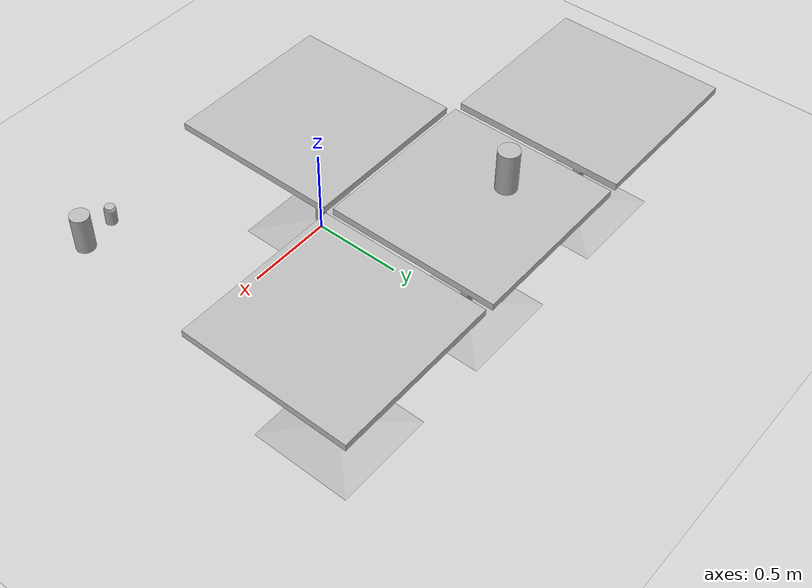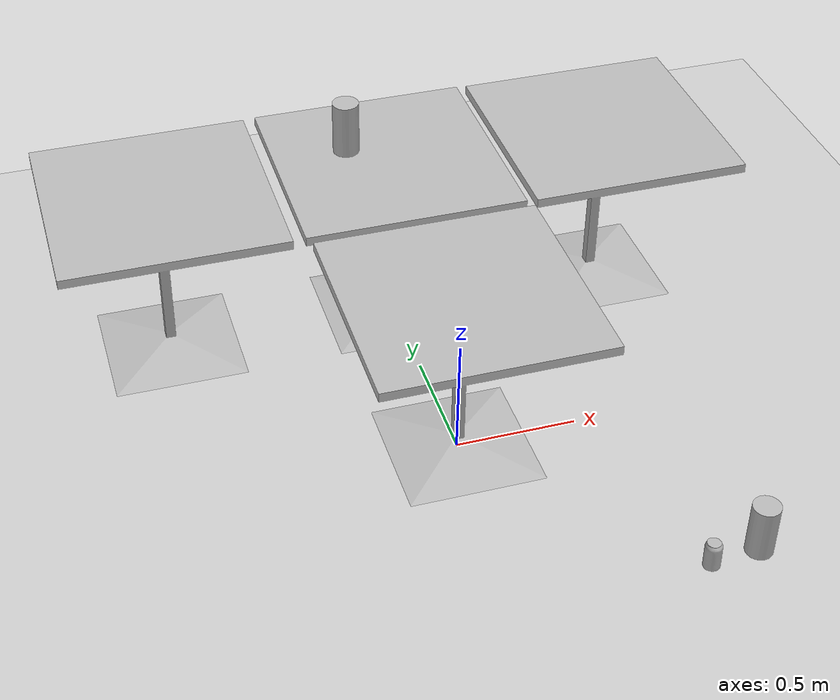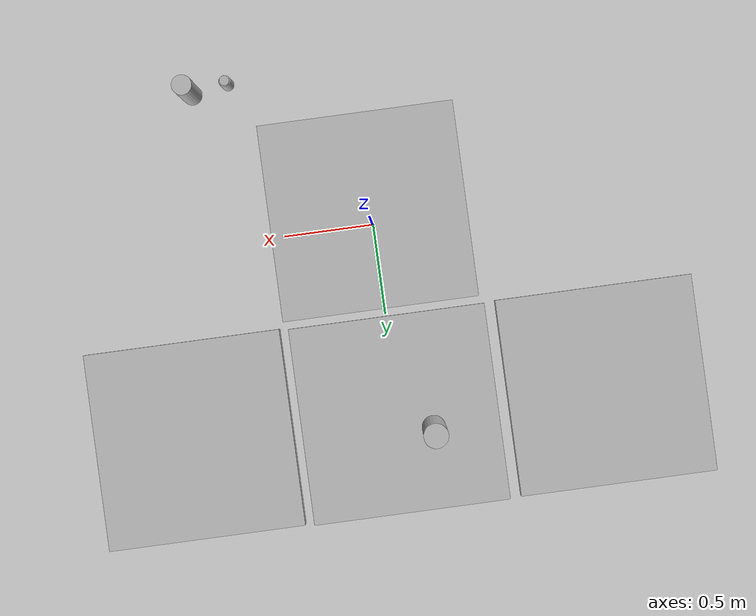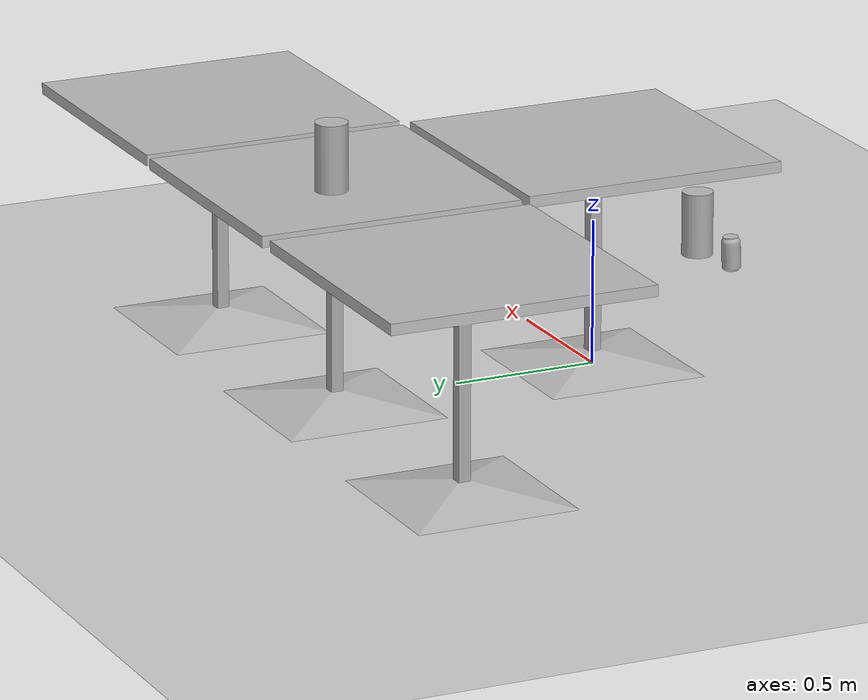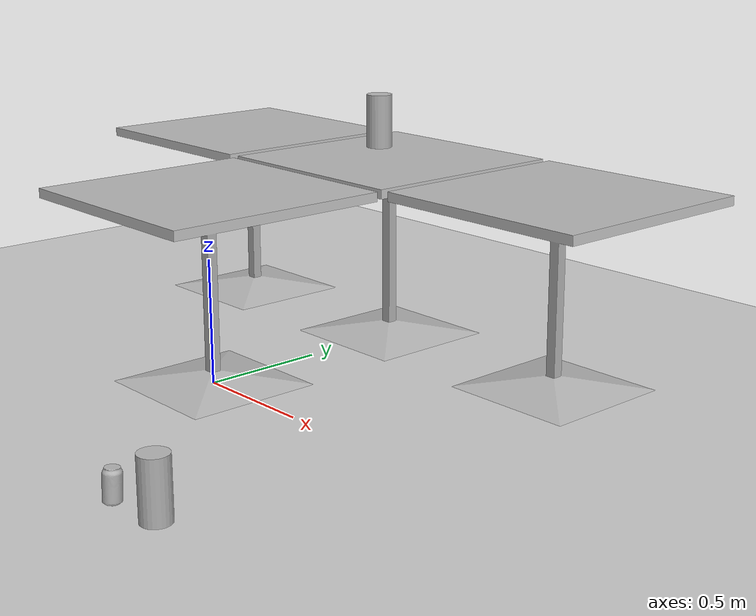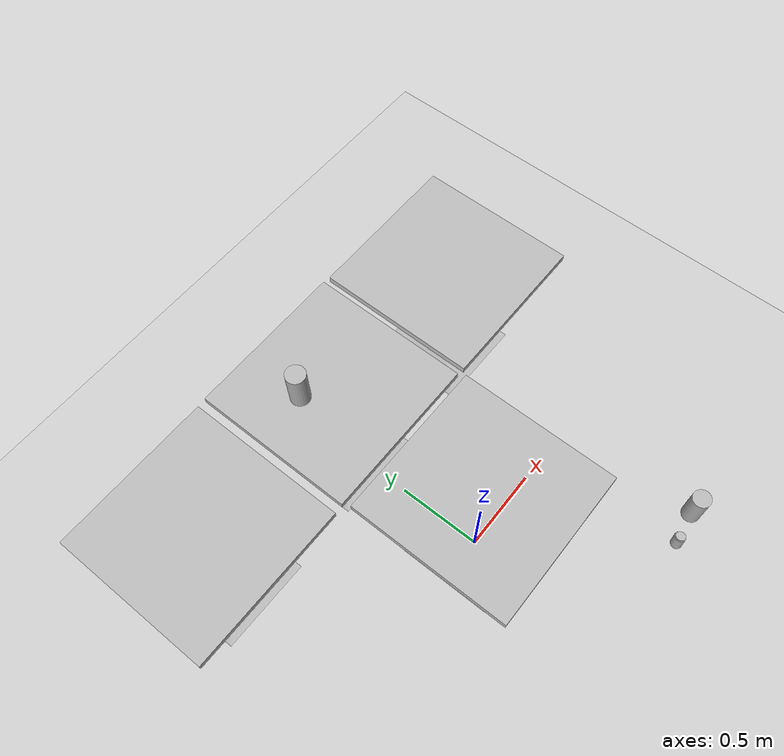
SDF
<sdf version="1.7">
 <world name="default">
  <light name="sun" type="directional">
   <pose>0 0 10 0 -0 0</pose>
   <diffuse>0.8 0.8 0.8 1</diffuse>
   <specular>0.2 0.2 0.2 1</specular>
   <attenuation>
    <range>1000</range>
    <constant>0.9</constant>
    <linear>0.01</linear>
    <quadratic>0.001</quadratic>
   </attenuation>
   <direction>-0.5 0.1 -0.9</direction>
   <spot><inner_angle>0</inner_angle><outer_angle>0</outer_angle><falloff>0</falloff></spot>
  </light>
  <model name="ground_plane">
   <static>1</static>
   <link name="link">
    <collision name="collision">
     <geometry><plane><normal>0 0 1</normal><size>100 100</size></plane></geometry>
     <surface>
      <contact><collide_bitmask>65535</collide_bitmask></contact>
      <friction><ode><mu>100</mu><mu2>50</mu2></ode></friction>
     </surface>
    </collision>
    <visual name="visual">
     <cast_shadows>0</cast_shadows>
     <geometry><plane><normal>0 0 1</normal><size>100 100</size></plane></geometry>
     <material>
      <script><uri>file://media/materials/scripts/gazebo.material</uri><name>Gazebo/Grey</name></script>
     </material>
    </visual>
   </link>
  </model>
  <gravity>0 0 -9.8</gravity>
  <magnetic_field>6e-06 2.3e-05 -4.2e-05</magnetic_field>
  <atmosphere type="adiabatic"/>
  <physics type="ode">
   <max_step_size>0.001</max_step_size>
   <real_time_factor>1</real_time_factor>
   <real_time_update_rate>1000</real_time_update_rate>
  </physics>
  <scene><ambient>0.4 0.4 0.4 1</ambient><background>0.7 0.7 0.7 1</background><shadows>1</shadows></scene>
  <spherical_coordinates>
   <surface_model>EARTH_WGS84</surface_model>
   <latitude_deg>0</latitude_deg>
   <longitude_deg>0</longitude_deg>
   <elevation>0</elevation>
   <heading_deg>0</heading_deg>
  </spherical_coordinates>
  <model name="beer">
   <link name="link">
    <pose>0 0 0.115 0 -0 0</pose>
    <inertial>
     <mass>0.39</mass>
     <inertia><ixx>0.00058</ixx><ixy>0</ixy><ixz>0</ixz><iyy>0.00058</iyy><iyz>0</iyz><izz>0.00019</izz></inertia>
    </inertial>
    <collision name="collision">
     <geometry><cylinder><radius>0.055</radius><length>0.23</length></cylinder></geometry>
    </collision>
    <visual name="visual">
     <geometry><cylinder><radius>0.055</radius><length>0.23</length></cylinder></geometry>
     <material>
      <script>
       <uri>model://beer/materials/scripts</uri>
       <uri>model://beer/materials/textures</uri>
       <name>Beer/Diffuse</name>
      </script>
     </material>
    </visual>
   </link>
   <pose>0.905622 -0.855339 -7e-06 -1e-06 -0 -1.7e-05</pose>
  </model>
  <model name="coke_can">
   <link name="link">
    <inertial>
     <pose>0 0 0.06 0 -0 0</pose>
     <mass>0.39</mass>
     <inertia>
      <ixx>0.00055575</ixx>
      <ixy>0</ixy>
      <ixz>0</ixz>
      <iyy>0.00055575</iyy>
      <iyz>0</iyz>
      <izz>0.0001755</izz>
     </inertia>
    </inertial>
    <collision name="collision">
     <pose>0.003937 0.004724 -0.18 0 -0 0</pose>
     <geometry><mesh><uri>model://coke_can/meshes/coke_can.dae</uri></mesh></geometry>
     <surface>
      <friction><ode><mu>1</mu><mu2>1</mu2></ode></friction>
      <contact><ode><kp>1e+07</kp><kd>1</kd><min_depth>0.001</min_depth><max_vel>0.1</max_vel></ode></contact>
     </surface>
    </collision>
    <visual name="visual">
     <pose>0.003937 0.004724 -0.18 0 -0 0</pose>
     <geometry><mesh><uri>model://coke_can/meshes/coke_can.dae</uri></mesh></geometry>
    </visual>
   </link>
   <pose>0.698522 -0.88353 -0.003265 -0.047939 -0.001484 -0.000787</pose>
  </model>
  <model name="cafe_table">
   <link name="link">
    <visual name="visual">
     <geometry><mesh><uri>model://cafe_table/meshes/cafe_table.dae</uri></mesh></geometry>
     <material><shader type="pixel"/></material>
    </visual>
    <collision name="surface">
     <pose>0 0 0.755 0 -0 0</pose>
     <geometry><box><size>0.913 0.913 0.04</size></box></geometry>
     <surface>
      <friction>
       <ode><mu>1</mu><mu2>1</mu2><fdir1>0 0 0</fdir1><slip1>0</slip1><slip2>0</slip2></ode>
       <torsional>
        <coefficient>1</coefficient>
        <patch_radius>0</patch_radius>
        <surface_radius>0</surface_radius>
        <use_patch_radius>1</use_patch_radius>
        <ode><slip>0</slip></ode>
       </torsional>
      </friction>
      <bounce><restitution_coefficient>0</restitution_coefficient><threshold>1e+06</threshold></bounce>
      <contact>
       <collide_without_contact>0</collide_without_contact>
       <collide_without_contact_bitmask>1</collide_without_contact_bitmask>
       <collide_bitmask>1</collide_bitmask>
       <ode>
        <soft_cfm>0</soft_cfm>
        <soft_erp>0.2</soft_erp>
        <kp>1e+13</kp>
        <kd>1</kd>
        <max_vel>0.01</max_vel>
        <min_depth>0</min_depth>
       </ode>
       <bullet>
        <split_impulse>1</split_impulse>
        <split_impulse_penetration_threshold>-0.01</split_impulse_penetration_threshold>
        <soft_cfm>0</soft_cfm>
        <soft_erp>0.2</soft_erp>
        <kp>1e+13</kp>
        <kd>1</kd>
       </bullet>
      </contact>
     </surface>
    </collision>
    <collision name="base">
     <pose>0 0 0.02 0 -0 0</pose>
     <geometry><box><size>0.56 0.56 0.04</size></box></geometry>
     <surface>
      <friction>
       <ode><mu>1</mu><mu2>1</mu2><fdir1>0 0 0</fdir1><slip1>0</slip1><slip2>0</slip2></ode>
       <torsional>
        <coefficient>1</coefficient>
        <patch_radius>0</patch_radius>
        <surface_radius>0</surface_radius>
        <use_patch_radius>1</use_patch_radius>
        <ode><slip>0</slip></ode>
       </torsional>
      </friction>
      <bounce><restitution_coefficient>0</restitution_coefficient><threshold>1e+06</threshold></bounce>
      <contact>
       <collide_without_contact>0</collide_without_contact>
       <collide_without_contact_bitmask>1</collide_without_contact_bitmask>
       <collide_bitmask>1</collide_bitmask>
       <ode>
        <soft_cfm>0</soft_cfm>
        <soft_erp>0.2</soft_erp>
        <kp>1e+13</kp>
        <kd>1</kd>
        <max_vel>0.01</max_vel>
        <min_depth>0</min_depth>
       </ode>
       <bullet>
        <split_impulse>1</split_impulse>
        <split_impulse_penetration_threshold>-0.01</split_impulse_penetration_threshold>
        <soft_cfm>0</soft_cfm>
        <soft_erp>0.2</soft_erp>
        <kp>1e+13</kp>
        <kd>1</kd>
       </bullet>
      </contact>
     </surface>
    </collision>
    <collision name="column">
     <pose>0 0 0.37 0 -0 0</pose>
     <geometry><box><size>0.042 0.042 0.74</size></box></geometry>
     <surface>
      <friction>
       <ode><mu>1</mu><mu2>1</mu2><fdir1>0 0 0</fdir1><slip1>0</slip1><slip2>0</slip2></ode>
       <torsional>
        <coefficient>1</coefficient>
        <patch_radius>0</patch_radius>
        <surface_radius>0</surface_radius>
        <use_patch_radius>1</use_patch_radius>
        <ode><slip>0</slip></ode>
       </torsional>
      </friction>
      <bounce><restitution_coefficient>0</restitution_coefficient><threshold>1e+06</threshold></bounce>
      <contact>
       <collide_without_contact>0</collide_without_contact>
       <collide_without_contact_bitmask>1</collide_without_contact_bitmask>
       <collide_bitmask>1</collide_bitmask>
       <ode>
        <soft_cfm>0</soft_cfm>
        <soft_erp>0.2</soft_erp>
        <kp>1e+13</kp>
        <kd>1</kd>
        <max_vel>0.01</max_vel>
        <min_depth>0</min_depth>
       </ode>
       <bullet>
        <split_impulse>1</split_impulse>
        <split_impulse_penetration_threshold>-0.01</split_impulse_penetration_threshold>
        <soft_cfm>0</soft_cfm>
        <soft_erp>0.2</soft_erp>
        <kp>1e+13</kp>
        <kd>1</kd>
       </bullet>
      </contact>
     </surface>
    </collision>
   </link>
   <static>1</static>
  </model>
  <model name="cafe_table_0_clone_0">
   <static>1</static>
   <link name="link">
    <collision name="surface">
     <pose>0 0 0.755 0 -0 0</pose>
     <geometry><box><size>0.913 0.913 0.04</size></box></geometry>
    </collision>
    <collision name="column">
     <pose>0 0 0.37 0 -0 0</pose>
     <geometry><box><size>0.042 0.042 0.74</size></box></geometry>
    </collision>
    <collision name="base">
     <pose>0 0 0.02 0 -0 0</pose>
     <geometry><box><size>0.56 0.56 0.04</size></box></geometry>
    </collision>
    <visual name="visual">
     <geometry><mesh><uri>model://cafe_table/meshes/cafe_table.dae</uri></mesh></geometry>
    </visual>
   </link>
   <pose>-0.019943 0.951737 0 0 -0 0</pose>
  </model>
  <model name="cafe_table_0_clone_0_clone">
   <static>1</static>
   <link name="link">
    <collision name="surface">
     <pose>0 0 0.755 0 -0 0</pose>
     <geometry><box><size>0.913 0.913 0.04</size></box></geometry>
    </collision>
    <collision name="column">
     <pose>0 0 0.37 0 -0 0</pose>
     <geometry><box><size>0.042 0.042 0.74</size></box></geometry>
    </collision>
    <collision name="base">
     <pose>0 0 0.02 0 -0 0</pose>
     <geometry><box><size>0.56 0.56 0.04</size></box></geometry>
    </collision>
    <visual name="visual">
     <geometry><mesh><uri>model://cafe_table/meshes/cafe_table.dae</uri></mesh></geometry>
    </visual>
   </link>
   <pose>0.936355 0.945022 0 0 -0 0</pose>
  </model>
  <model name="cafe_table_0_clone_0_clone_0">
   <static>1</static>
   <link name="link">
    <collision name="surface">
     <pose>0 0 0.755 0 -0 0</pose>
     <geometry><box><size>0.913 0.913 0.04</size></box></geometry>
    </collision>
    <collision name="column">
     <pose>0 0 0.37 0 -0 0</pose>
     <geometry><box><size>0.042 0.042 0.74</size></box></geometry>
    </collision>
    <collision name="base">
     <pose>0 0 0.02 0 -0 0</pose>
     <geometry><box><size>0.56 0.56 0.04</size></box></geometry>
    </collision>
    <visual name="visual">
     <geometry><mesh><uri>model://cafe_table/meshes/cafe_table.dae</uri></mesh></geometry>
    </visual>
   </link>
   <pose>-0.986125 0.946547 0 0 -0 0</pose>
  </model>
  <model name="beer_clone">
   <link name="link">
    <pose>0 0 0.115 0 -0 0</pose>
    <inertial>
     <mass>0.39</mass>
     <inertia><ixx>0.00058</ixx><ixy>0</ixy><ixz>0</ixz><iyy>0.00058</iyy><iyz>0</iyz><izz>0.00019</izz></inertia>
    </inertial>
    <collision name="collision">
     <geometry><cylinder><radius>0.055</radius><length>0.23</length></cylinder></geometry>
    </collision>
    <visual name="visual">
     <geometry><cylinder><radius>0.055</radius><length>0.23</length></cylinder></geometry>
     <material>
      <script>
       <uri>model://beer/materials/scripts</uri>
       <uri>model://beer/materials/textures</uri>
       <name>Beer/Diffuse</name>
      </script>
     </material>
    </visual>
   </link>
   <pose>-0.170646 1.02885 0.790672 0 0 -1.7e-05</pose>
  </model>
 </world>
</sdf>
